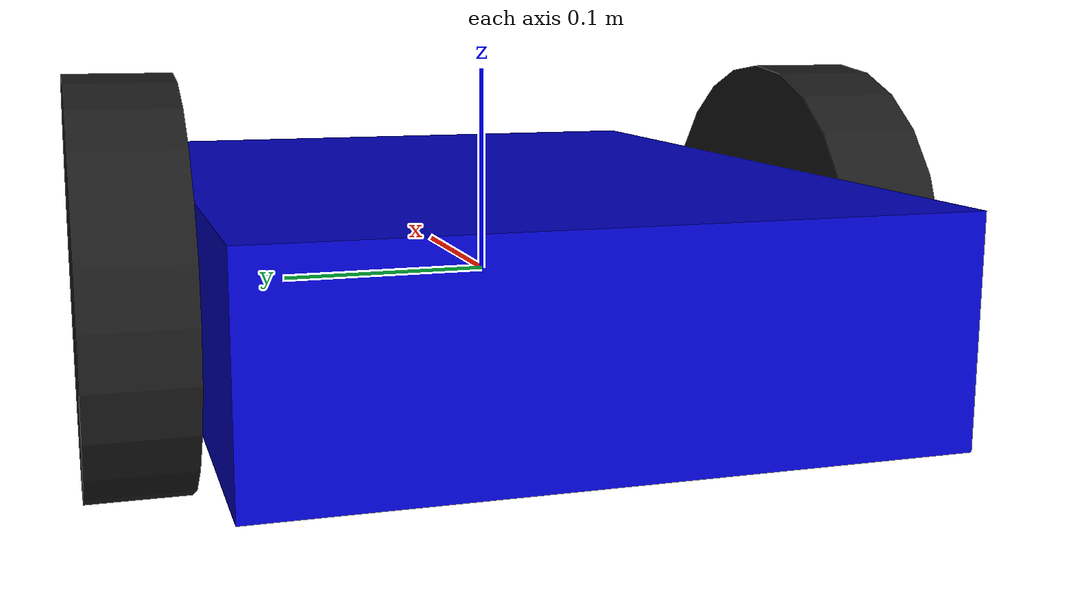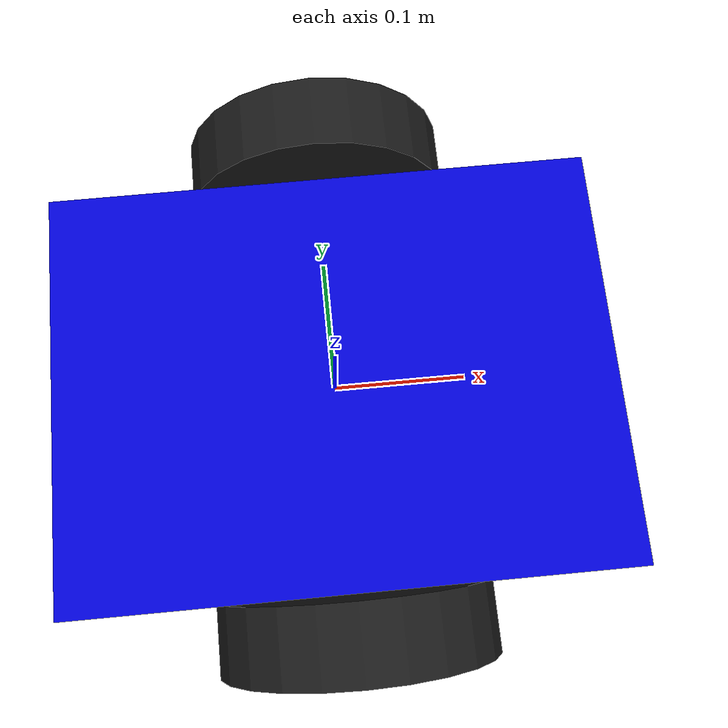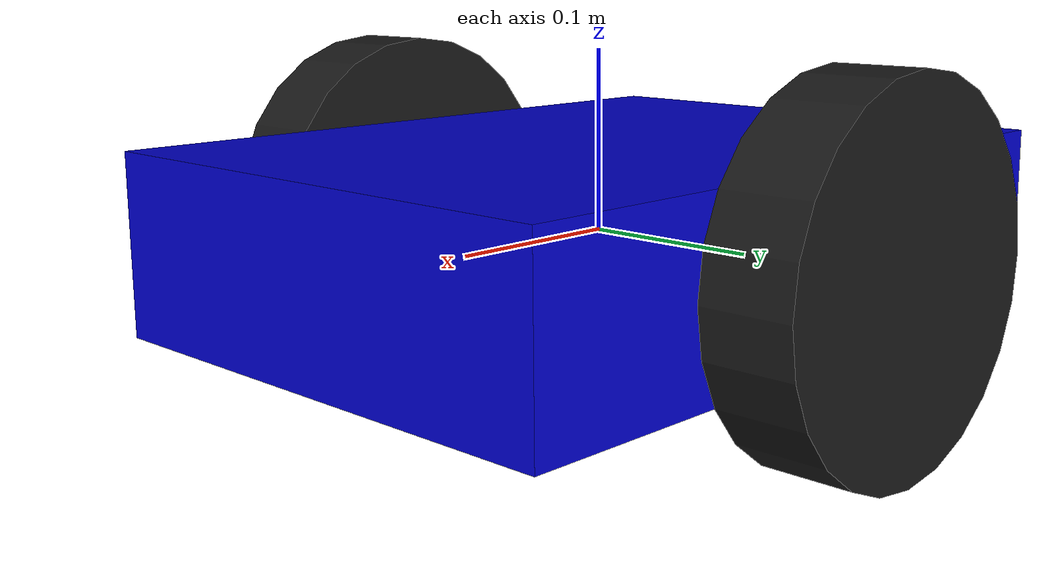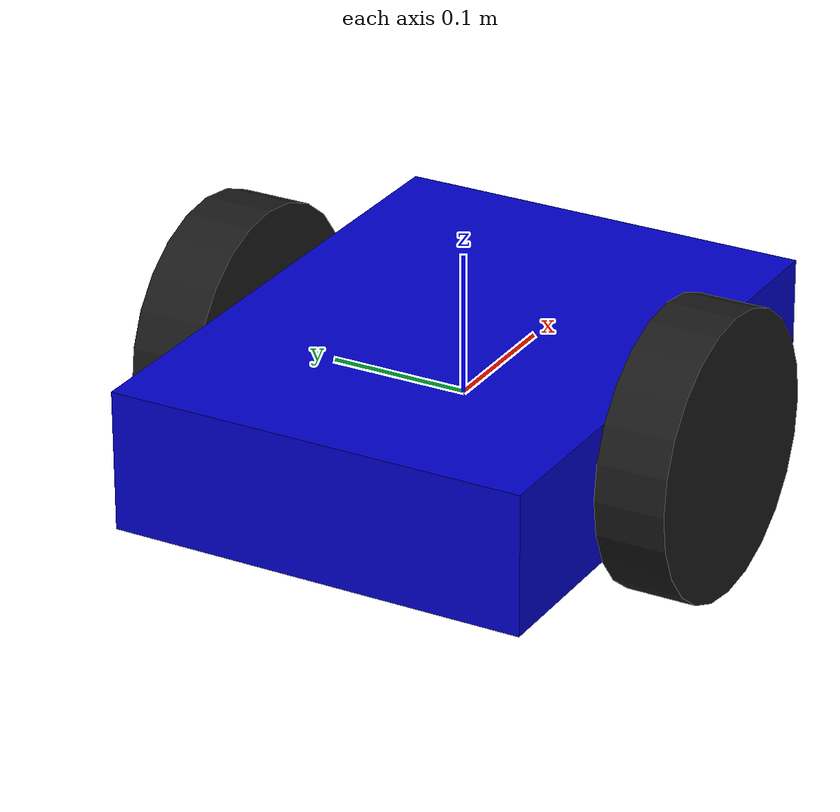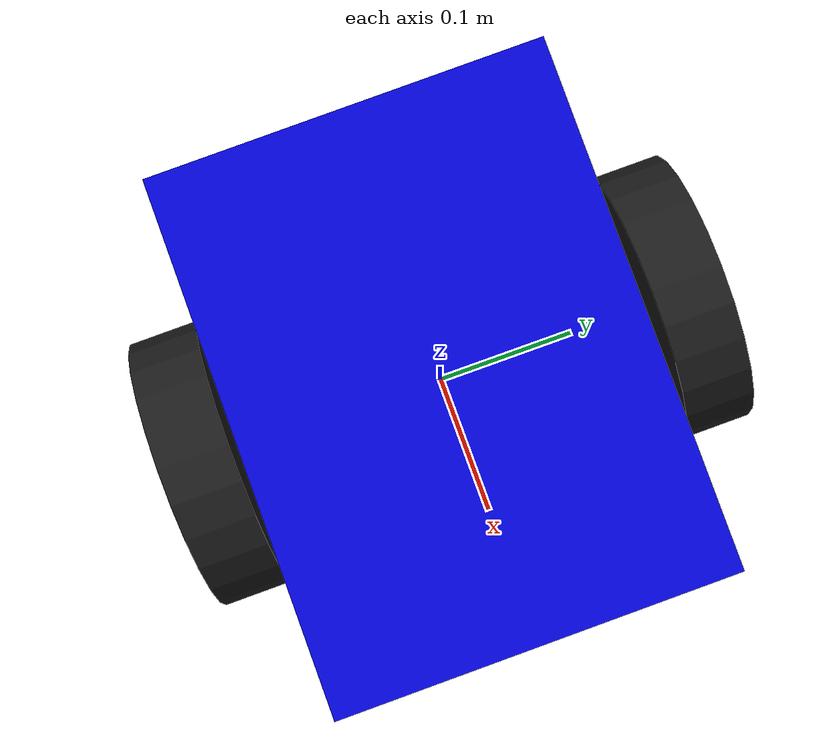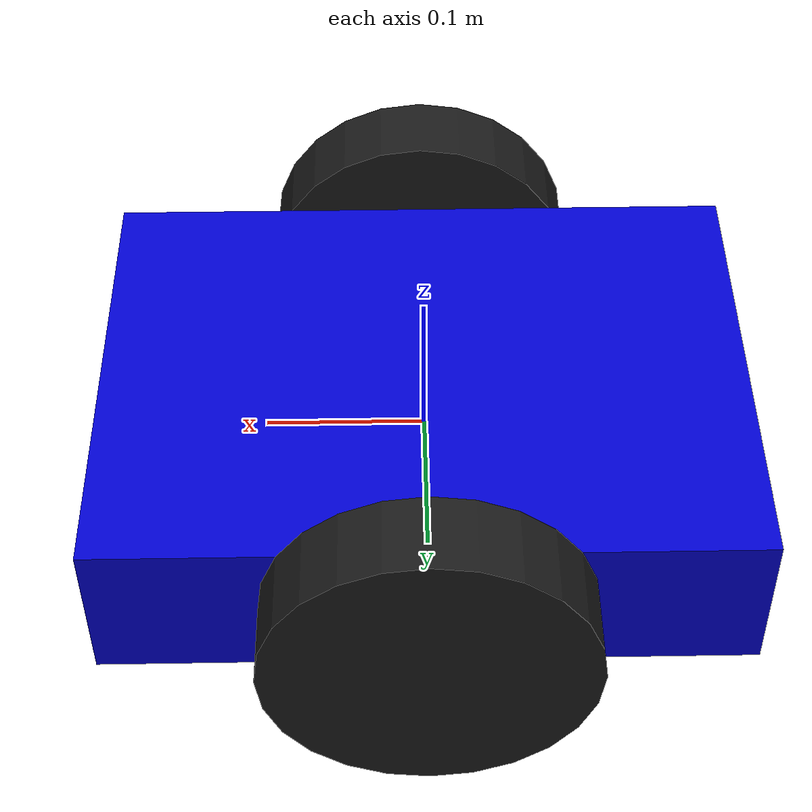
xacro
<?xml version="1.0"?>
<robot name="hil_robot" xmlns:xacro="http://www.ros.org/wiki/xacro">

  <!-- ROBOT KINEMATICS & VISUALS                 -->

  <link name="base_link">
    <visual>
      <geometry>
        <box size="0.4 0.3 0.1"/>
      </geometry>
      <material name="blue">
        <color rgba="0 0 0.8 1"/>
      </material>
    </visual>
  </link>

  <link name="left_wheel">
    <visual>
      <geometry>
        <cylinder radius="0.1" length="0.05"/>
      </geometry>
      <material name="black">
        <color rgba="0.1 0.1 0.1 1"/>
      </material>
    </visual>
  </link>

  <link name="right_wheel">
    <visual>
      <geometry>
        <cylinder radius="0.1" length="0.05"/>
      </geometry>
      <material name="black">
        <color rgba="0.1 0.1 0.1 1"/>
      </material>
    </visual>
  </link>

  <joint name="left_wheel_joint" type="continuous">
    <parent link="base_link"/>
    <child link="left_wheel"/>
    <origin xyz="0 0.175 0" rpy="-1.5707 0 0"/>
    <axis xyz="0 0 1"/>
  </joint>

  <joint name="right_wheel_joint" type="continuous">
    <parent link="base_link"/>
    <child link="right_wheel"/>
    <origin xyz="0 -0.175 0" rpy="-1.5707 0 0"/>
    <axis xyz="0 0 1"/>
  </joint>

  <!-- HARDWARE INTERFACE (THE HIL BRIDGE)        -->

  <ros2_control name="QemuHardware" type="system">
    <hardware>
      <!-- This plugin name must match the one defined in your qemu_hardware_interface.xml -->
      <plugin>qemu_hardware_interface/QemuSystemInterface</plugin>
    </hardware>

    <joint name="left_wheel_joint">
      <command_interface name="velocity"/>
      <state_interface name="position"/>
      <state_interface name="velocity"/>
    </joint>

    <joint name="right_wheel_joint">
      <command_interface name="velocity"/>
      <state_interface name="position"/>
      <state_interface name="velocity"/>
    </joint>
  </ros2_control>

</robot>
